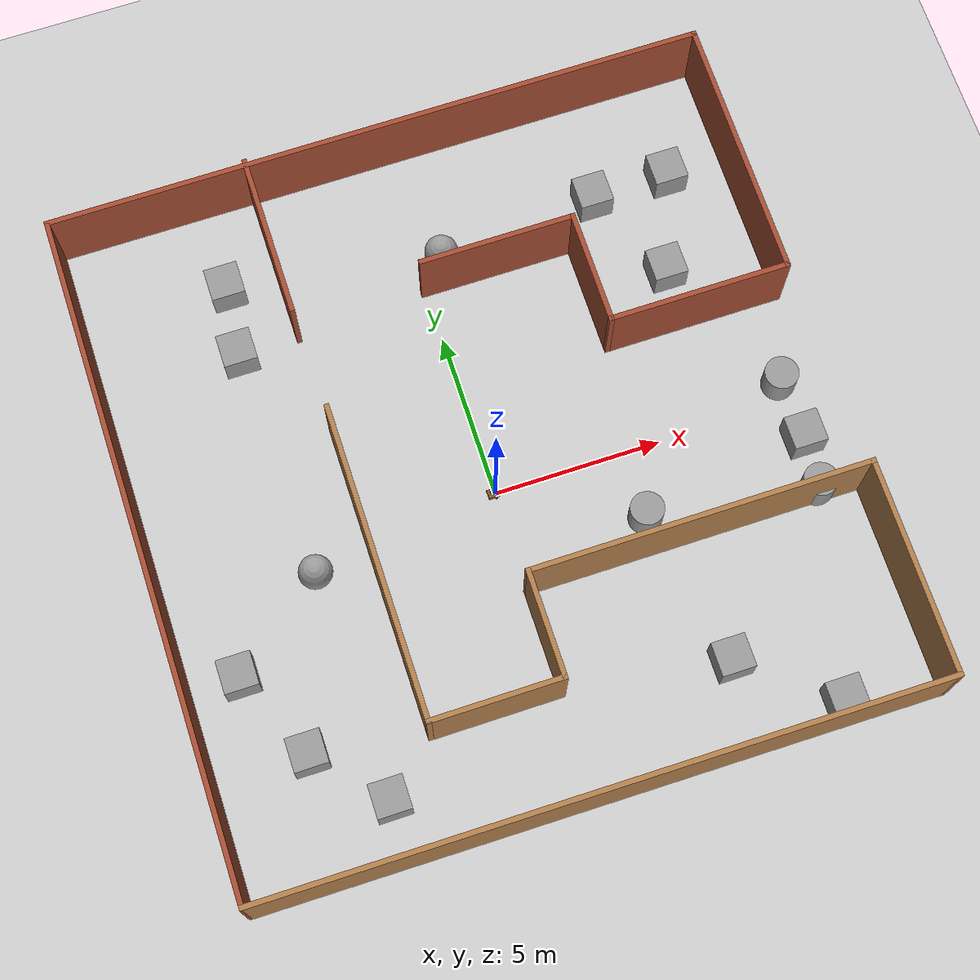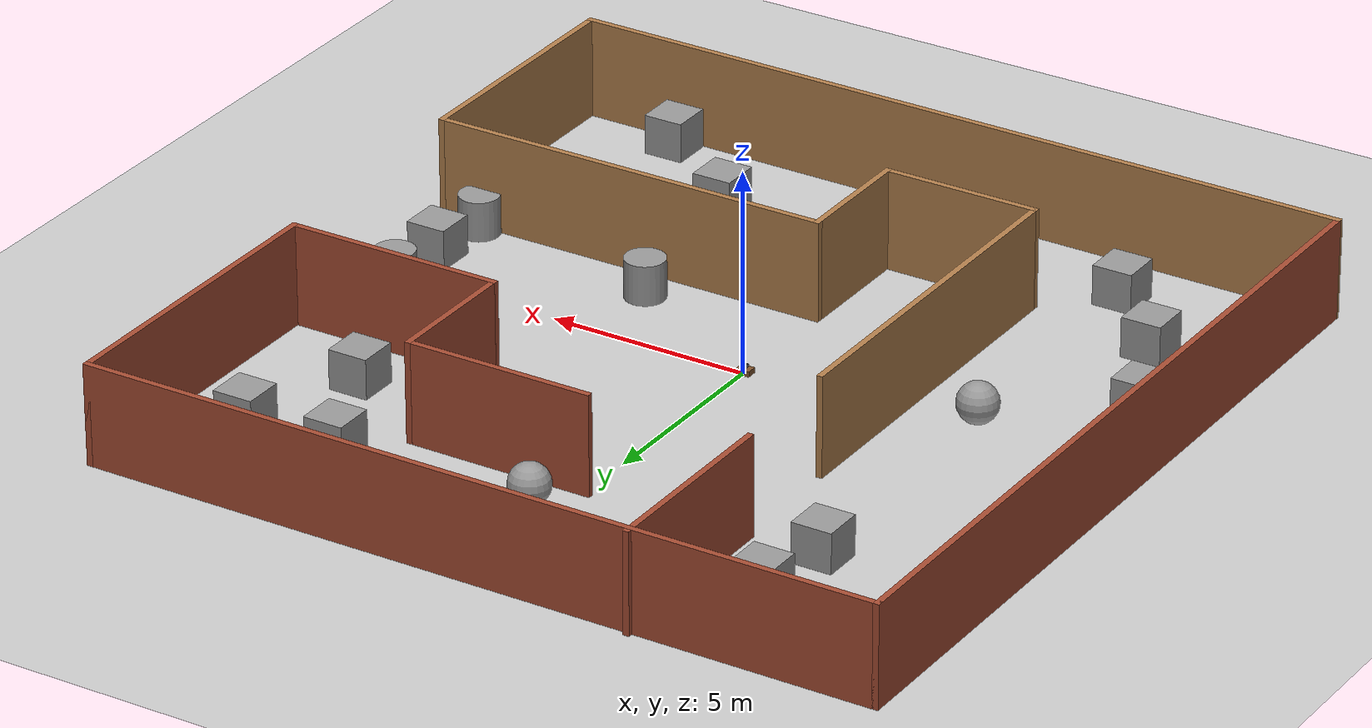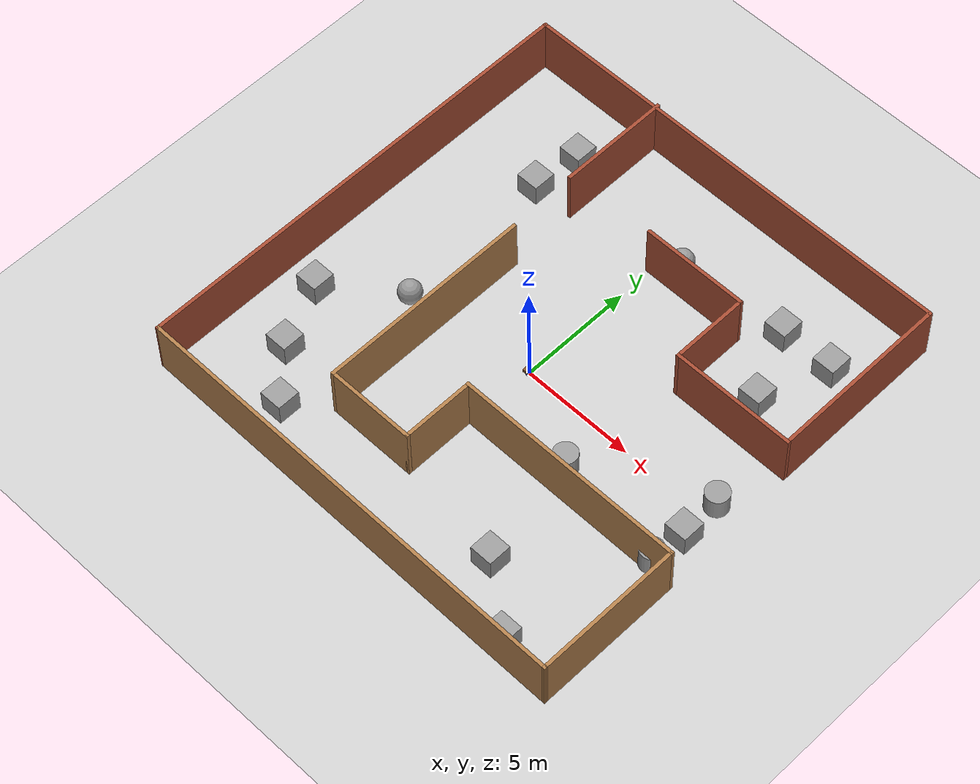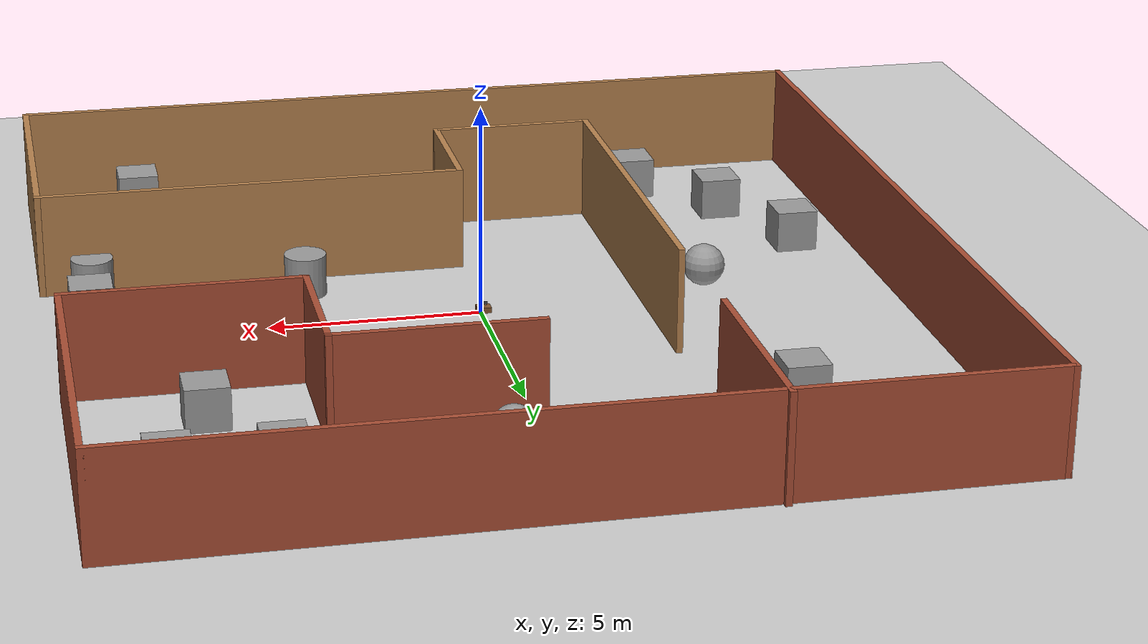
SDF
<sdf version="1.7">
 <world name="default">
  <light name="sun" type="directional">
   <pose>0 0 10 0 -0 0</pose>
   <diffuse>0.8 0.8 0.8 1</diffuse>
   <specular>0.2 0.2 0.2 1</specular>
   <attenuation>
    <range>1000</range>
    <constant>0.9</constant>
    <linear>0.01</linear>
    <quadratic>0.001</quadratic>
   </attenuation>
   <direction>-0.5 0.1 -0.9</direction>
   <spot><inner_angle>0</inner_angle><outer_angle>0</outer_angle><falloff>0</falloff></spot>
  </light>
  <model name="ground_plane">
   <static>1</static>
   <link name="link">
    <collision name="collision">
     <geometry><plane><normal>0 0 1</normal><size>100 100</size></plane></geometry>
     <surface>
      <contact><collide_bitmask>65535</collide_bitmask></contact>
      <friction><ode><mu>100</mu><mu2>50</mu2></ode></friction>
     </surface>
    </collision>
    <visual name="visual">
     <cast_shadows>0</cast_shadows>
     <geometry><plane><normal>0 0 1</normal><size>100 100</size></plane></geometry>
     <material>
      <script><uri>file://media/materials/scripts/gazebo.material</uri><name>Gazebo/Grey</name></script>
     </material>
    </visual>
   </link>
  </model>
  <gravity>0 0 -9.8</gravity>
  <magnetic_field>6e-06 2.3e-05 -4.2e-05</magnetic_field>
  <atmosphere type="adiabatic"/>
  <physics type="ode">
   <max_step_size>0.001</max_step_size>
   <real_time_factor>1</real_time_factor>
   <real_time_update_rate>1000</real_time_update_rate>
  </physics>
  <scene><ambient>0.4 0.4 0.4 1</ambient><background>0.7 0.7 0.7 1</background><shadows>1</shadows></scene>
  <spherical_coordinates>
   <surface_model>EARTH_WGS84</surface_model>
   <latitude_deg>0</latitude_deg>
   <longitude_deg>0</longitude_deg>
   <elevation>0</elevation>
   <heading_deg>0</heading_deg>
  </spherical_coordinates>
  <model name="bongworld">
   <pose>0.008371 0.87983 0 0 -0 0</pose>
   <link name="Wall_22">
    <collision name="Wall_22_Collision">
     <geometry><box><size>20.1622 0.15 2.5</size></box></geometry>
     <pose>0 0 1.25 0 -0 0</pose>
    </collision>
    <visual name="Wall_22_Visual">
     <pose>0 0 1.25 0 -0 0</pose>
     <geometry><box><size>20.1622 0.15 2.5</size></box></geometry>
     <material>
      <script><uri>file://media/materials/scripts/gazebo.material</uri><name>Gazebo/Wood</name></script>
      <ambient>1 1 1 1</ambient>
     </material>
     <meta><layer>0</layer></meta>
    </visual>
    <pose>-0 -10.2319 0 0 -0 -0.006065</pose>
   </link>
   <link name="Wall_29">
    <collision name="Wall_29_Collision">
     <geometry><box><size>6.5 0.15 2.5</size></box></geometry>
     <pose>0 0 1.25 0 -0 0</pose>
    </collision>
    <visual name="Wall_29_Visual">
     <pose>0 0 1.25 0 -0 0</pose>
     <geometry><box><size>6.5 0.15 2.5</size></box></geometry>
     <material>
      <script><uri>file://media/materials/scripts/gazebo.material</uri><name>Gazebo/Wood</name></script>
      <ambient>1 1 1 1</ambient>
     </material>
     <meta><layer>0</layer></meta>
    </visual>
    <pose>10.0059 -7.11757 0 0 -0 1.5708</pose>
   </link>
   <link name="Wall_30">
    <collision name="Wall_30_Collision">
     <geometry><box><size>10.25 0.15 2.5</size></box></geometry>
     <pose>0 0 1.25 0 -0 0</pose>
    </collision>
    <visual name="Wall_30_Visual">
     <pose>0 0 1.25 0 -0 0</pose>
     <geometry><box><size>10.25 0.15 2.5</size></box></geometry>
     <material>
      <script><uri>file://media/materials/scripts/gazebo.material</uri><name>Gazebo/Wood</name></script>
      <ambient>1 1 1 1</ambient>
     </material>
     <meta><layer>0</layer></meta>
    </visual>
    <pose>4.95591 -3.94257 0 0 -0 3.14159</pose>
   </link>
   <link name="Wall_31">
    <collision name="Wall_31_Collision">
     <geometry><box><size>3.25 0.15 2.5</size></box></geometry>
     <pose>0 0 1.25 0 -0 0</pose>
    </collision>
    <visual name="Wall_31_Visual">
     <pose>0 0 1.25 0 -0 0</pose>
     <geometry><box><size>3.25 0.15 2.5</size></box></geometry>
     <material>
      <script><uri>file://media/materials/scripts/gazebo.material</uri><name>Gazebo/Wood</name></script>
      <ambient>1 1 1 1</ambient>
     </material>
     <meta><layer>0</layer></meta>
    </visual>
    <pose>-0.094089 -5.49257 0 0 -0 -1.5708</pose>
   </link>
   <link name="Wall_33">
    <collision name="Wall_33_Collision">
     <geometry><box><size>4 0.15 2.5</size></box></geometry>
     <pose>0 0 1.25 0 -0 0</pose>
    </collision>
    <visual name="Wall_33_Visual">
     <pose>0 0 1.25 0 -0 0</pose>
     <geometry><box><size>4 0.15 2.5</size></box></geometry>
     <material>
      <script><uri>file://media/materials/scripts/gazebo.material</uri><name>Gazebo/Wood</name></script>
      <ambient>1 1 1 1</ambient>
     </material>
     <meta><layer>0</layer></meta>
    </visual>
    <pose>-2.01909 -7.04257 0 0 -0 3.14159</pose>
   </link>
   <link name="Wall_35">
    <collision name="Wall_35_Collision">
     <geometry><box><size>9.5 0.15 2.5</size></box></geometry>
     <pose>0 0 1.25 0 -0 0</pose>
    </collision>
    <visual name="Wall_35_Visual">
     <pose>0 0 1.25 0 -0 0</pose>
     <geometry><box><size>9.5 0.15 2.5</size></box></geometry>
     <material>
      <script><uri>file://media/materials/scripts/gazebo.material</uri><name>Gazebo/Wood</name></script>
      <ambient>1 1 1 1</ambient>
     </material>
     <meta><layer>0</layer></meta>
    </visual>
    <pose>-3.94409 -2.36757 0 0 -0 1.5708</pose>
   </link>
   <link name="Wall_39">
    <collision name="Wall_39_Collision">
     <geometry><box><size>20.5 0.15 2.5</size></box></geometry>
     <pose>0 0 1.25 0 -0 0</pose>
    </collision>
    <visual name="Wall_39_Visual">
     <pose>0 0 1.25 0 -0 0</pose>
     <geometry><box><size>20.5 0.15 2.5</size></box></geometry>
     <material>
      <script><uri>file://media/materials/scripts/gazebo.material</uri><name>Gazebo/Bricks</name></script>
      <ambient>1 1 1 1</ambient>
     </material>
     <meta><layer>0</layer></meta>
    </visual>
    <pose>-10.0059 0.003801 0 0 -0 1.5708</pose>
   </link>
   <link name="Wall_40">
    <collision name="Wall_40_Collision">
     <geometry><box><size>20 0.15 2.5</size></box></geometry>
     <pose>0 0 1.25 0 -0 0</pose>
    </collision>
    <visual name="Wall_40_Visual">
     <pose>0 0 1.25 0 -0 0</pose>
     <geometry><box><size>20 0.15 2.5</size></box></geometry>
     <material>
      <script><uri>file://media/materials/scripts/gazebo.material</uri><name>Gazebo/Bricks</name></script>
      <ambient>1 1 1 1</ambient>
     </material>
     <meta><layer>0</layer></meta>
    </visual>
    <pose>-0.080911 10.1788 0 0 -0 0</pose>
   </link>
   <link name="Wall_41">
    <collision name="Wall_41_Collision">
     <geometry><box><size>8 0.15 2.5</size></box></geometry>
     <pose>0 0 1.25 0 -0 0</pose>
    </collision>
    <visual name="Wall_41_Visual">
     <pose>0 0 1.25 0 -0 0</pose>
     <geometry><box><size>8 0.15 2.5</size></box></geometry>
     <material>
      <script><uri>file://media/materials/scripts/gazebo.material</uri><name>Gazebo/Bricks</name></script>
      <ambient>1 1 1 1</ambient>
     </material>
     <meta><layer>0</layer></meta>
    </visual>
    <pose>9.84409 6.2538 0 0 -0 -1.5708</pose>
   </link>
   <link name="Wall_42">
    <collision name="Wall_42_Collision">
     <geometry><box><size>5.5 0.15 2.5</size></box></geometry>
     <pose>0 0 1.25 0 -0 0</pose>
    </collision>
    <visual name="Wall_42_Visual">
     <pose>0 0 1.25 0 -0 0</pose>
     <geometry><box><size>5.5 0.15 2.5</size></box></geometry>
     <material>
      <script><uri>file://media/materials/scripts/gazebo.material</uri><name>Gazebo/Bricks</name></script>
      <ambient>1 1 1 1</ambient>
     </material>
     <meta><layer>0</layer></meta>
    </visual>
    <pose>7.16909 2.3288 0 0 -0 3.14159</pose>
   </link>
   <link name="Wall_43">
    <collision name="Wall_43_Collision">
     <geometry><box><size>3.5 0.15 2.5</size></box></geometry>
     <pose>0 0 1.25 0 -0 0</pose>
    </collision>
    <visual name="Wall_43_Visual">
     <pose>0 0 1.25 0 -0 0</pose>
     <geometry><box><size>3.5 0.15 2.5</size></box></geometry>
     <material>
      <script><uri>file://media/materials/scripts/gazebo.material</uri><name>Gazebo/Bricks</name></script>
      <ambient>1 1 1 1</ambient>
     </material>
     <meta><layer>0</layer></meta>
    </visual>
    <pose>4.49409 4.0038 0 0 -0 1.5708</pose>
   </link>
   <link name="Wall_44">
    <collision name="Wall_44_Collision">
     <geometry><box><size>4.75 0.15 2.5</size></box></geometry>
     <pose>0 0 1.25 0 -0 0</pose>
    </collision>
    <visual name="Wall_44_Visual">
     <pose>0 0 1.25 0 -0 0</pose>
     <geometry><box><size>4.75 0.15 2.5</size></box></geometry>
     <material>
      <script><uri>file://media/materials/scripts/gazebo.material</uri><name>Gazebo/Bricks</name></script>
      <ambient>1 1 1 1</ambient>
     </material>
     <meta><layer>0</layer></meta>
    </visual>
    <pose>2.19409 5.6788 0 0 -0 3.14159</pose>
   </link>
   <link name="Wall_46">
    <collision name="Wall_46_Collision">
     <geometry><box><size>5 0.15 2.5</size></box></geometry>
     <pose>0 0 1.25 0 -0 0</pose>
    </collision>
    <visual name="Wall_46_Visual">
     <pose>0 0 1.25 0 -0 0</pose>
     <geometry><box><size>5 0.15 2.5</size></box></geometry>
     <material>
      <script><uri>file://media/materials/scripts/gazebo.material</uri><name>Gazebo/Bricks</name></script>
      <ambient>1 1 1 1</ambient>
     </material>
     <meta><layer>0</layer></meta>
    </visual>
    <pose>-4.04268 7.86802 0 0 -0 -1.5708</pose>
   </link>
   <static>1</static>
  </model>
  <model name="unit_sphere">
   <pose>0.774615 7.52795 0.5 0 -0 0</pose>
   <link name="link">
    <inertial>
     <mass>1</mass>
     <inertia><ixx>0.1</ixx><ixy>0</ixy><ixz>0</ixz><iyy>0.1</iyy><iyz>0</iyz><izz>0.1</izz></inertia>
    </inertial>
    <collision name="collision"><geometry><sphere><radius>0.5</radius></sphere></geometry></collision>
    <visual name="visual">
     <geometry><sphere><radius>0.5</radius></sphere></geometry>
     <material>
      <script><name>Gazebo/Grey</name><uri>file://media/materials/scripts/gazebo.material</uri></script>
     </material>
    </visual>
   </link>
  </model>
  <model name="unit_box">
   <pose>7.29471 -8.77529 0.499995 1e-05 -0 0</pose>
   <link name="link">
    <inertial>
     <mass>1</mass>
     <inertia>
      <ixx>0.166667</ixx>
      <ixy>0</ixy>
      <ixz>0</ixz>
      <iyy>0.166667</iyy>
      <iyz>0</iyz>
      <izz>0.166667</izz>
     </inertia>
    </inertial>
    <collision name="collision"><geometry><box><size>1 1 1</size></box></geometry></collision>
    <visual name="visual">
     <geometry><box><size>1 1 1</size></box></geometry>
     <material>
      <script><name>Gazebo/Grey</name><uri>file://media/materials/scripts/gazebo.material</uri></script>
     </material>
    </visual>
   </link>
  </model>
  <model name="unit_box_0">
   <pose>4.69763 -6.74625 0.499995 0 -1e-05 0</pose>
   <link name="link">
    <inertial>
     <mass>1</mass>
     <inertia>
      <ixx>0.166667</ixx>
      <ixy>0</ixy>
      <ixz>0</ixz>
      <iyy>0.166667</iyy>
      <iyz>0</iyz>
      <izz>0.166667</izz>
     </inertia>
    </inertial>
    <collision name="collision"><geometry><box><size>1 1 1</size></box></geometry></collision>
    <visual name="visual">
     <geometry><box><size>1 1 1</size></box></geometry>
     <material>
      <script><name>Gazebo/Grey</name><uri>file://media/materials/scripts/gazebo.material</uri></script>
     </material>
    </visual>
   </link>
  </model>
  <model name="unit_cylinder">
   <pose>8.83209 -2.74601 0.499991 -0 -0 -0</pose>
   <link name="link">
    <inertial>
     <mass>1</mass>
     <inertia><ixx>0.145833</ixx><ixy>0</ixy><ixz>0</ixz><iyy>0.145833</iyy><iyz>0</iyz><izz>0.125</izz></inertia>
    </inertial>
    <collision name="collision">
     <geometry><cylinder><radius>0.5</radius><length>1</length></cylinder></geometry>
    </collision>
    <visual name="visual">
     <geometry><cylinder><radius>0.5</radius><length>1</length></cylinder></geometry>
     <material>
      <script><name>Gazebo/Grey</name><uri>file://media/materials/scripts/gazebo.material</uri></script>
     </material>
    </visual>
   </link>
  </model>
  <model name="unit_box_1">
   <pose>8.96476 -1.19541 0.499995 0 -1e-05 0</pose>
   <link name="link">
    <inertial>
     <mass>1</mass>
     <inertia>
      <ixx>0.166667</ixx>
      <ixy>0</ixy>
      <ixz>0</ixz>
      <iyy>0.166667</iyy>
      <iyz>0</iyz>
      <izz>0.166667</izz>
     </inertia>
    </inertial>
    <collision name="collision"><geometry><box><size>1 1 1</size></box></geometry></collision>
    <visual name="visual">
     <geometry><box><size>1 1 1</size></box></geometry>
     <material>
      <script><name>Gazebo/Grey</name><uri>file://media/materials/scripts/gazebo.material</uri></script>
     </material>
    </visual>
   </link>
  </model>
  <model name="unit_cylinder_0">
   <pose>8.91399 0.618473 0.499991 -0 -0 -0</pose>
   <link name="link">
    <inertial>
     <mass>1</mass>
     <inertia><ixx>0.145833</ixx><ixy>0</ixy><ixz>0</ixz><iyy>0.145833</iyy><iyz>0</iyz><izz>0.125</izz></inertia>
    </inertial>
    <collision name="collision">
     <geometry><cylinder><radius>0.5</radius><length>1</length></cylinder></geometry>
    </collision>
    <visual name="visual">
     <geometry><cylinder><radius>0.5</radius><length>1</length></cylinder></geometry>
     <material>
      <script><name>Gazebo/Grey</name><uri>file://media/materials/scripts/gazebo.material</uri></script>
     </material>
    </visual>
   </link>
  </model>
  <model name="unit_box_2">
   <pose>6.93453 4.95951 0.499995 0 -1e-05 0</pose>
   <link name="link">
    <inertial>
     <mass>1</mass>
     <inertia>
      <ixx>0.166667</ixx>
      <ixy>0</ixy>
      <ixz>0</ixz>
      <iyy>0.166667</iyy>
      <iyz>0</iyz>
      <izz>0.166667</izz>
     </inertia>
    </inertial>
    <collision name="collision"><geometry><box><size>1 1 1</size></box></geometry></collision>
    <visual name="visual">
     <geometry><box><size>1 1 1</size></box></geometry>
     <material>
      <script><name>Gazebo/Grey</name><uri>file://media/materials/scripts/gazebo.material</uri></script>
     </material>
    </visual>
   </link>
  </model>
  <model name="unit_box_3">
   <pose>5.61902 7.83816 0.499995 -1e-05 -0 -0</pose>
   <link name="link">
    <inertial>
     <mass>1</mass>
     <inertia>
      <ixx>0.166667</ixx>
      <ixy>0</ixy>
      <ixz>0</ixz>
      <iyy>0.166667</iyy>
      <iyz>0</iyz>
      <izz>0.166667</izz>
     </inertia>
    </inertial>
    <collision name="collision"><geometry><box><size>1 1 1</size></box></geometry></collision>
    <visual name="visual">
     <geometry><box><size>1 1 1</size></box></geometry>
     <material>
      <script><name>Gazebo/Grey</name><uri>file://media/materials/scripts/gazebo.material</uri></script>
     </material>
    </visual>
   </link>
  </model>
  <model name="unit_box_4">
   <pose>7.9891 7.87749 0.499995 0 1e-05 0</pose>
   <link name="link">
    <inertial>
     <mass>1</mass>
     <inertia>
      <ixx>0.166667</ixx>
      <ixy>0</ixy>
      <ixz>0</ixz>
      <iyy>0.166667</iyy>
      <iyz>0</iyz>
      <izz>0.166667</izz>
     </inertia>
    </inertial>
    <collision name="collision"><geometry><box><size>1 1 1</size></box></geometry></collision>
    <visual name="visual">
     <geometry><box><size>1 1 1</size></box></geometry>
     <material>
      <script><name>Gazebo/Grey</name><uri>file://media/materials/scripts/gazebo.material</uri></script>
     </material>
    </visual>
   </link>
  </model>
  <model name="unit_cylinder_1">
   <pose>3.84844 -2.02494 0.499991 -0 -0 -0</pose>
   <link name="link">
    <inertial>
     <mass>1</mass>
     <inertia><ixx>0.145833</ixx><ixy>0</ixy><ixz>0</ixz><iyy>0.145833</iyy><iyz>0</iyz><izz>0.125</izz></inertia>
    </inertial>
    <collision name="collision">
     <geometry><cylinder><radius>0.5</radius><length>1</length></cylinder></geometry>
    </collision>
    <visual name="visual">
     <geometry><cylinder><radius>0.5</radius><length>1</length></cylinder></geometry>
     <material>
      <script><name>Gazebo/Grey</name><uri>file://media/materials/scripts/gazebo.material</uri></script>
     </material>
    </visual>
   </link>
  </model>
  <model name="unit_box_5">
   <pose>-5.85997 6.29924 0.499995 0 1e-05 0</pose>
   <link name="link">
    <inertial>
     <mass>1</mass>
     <inertia>
      <ixx>0.166667</ixx>
      <ixy>0</ixy>
      <ixz>0</ixz>
      <iyy>0.166667</iyy>
      <iyz>0</iyz>
      <izz>0.166667</izz>
     </inertia>
    </inertial>
    <collision name="collision"><geometry><box><size>1 1 1</size></box></geometry></collision>
    <visual name="visual">
     <geometry><box><size>1 1 1</size></box></geometry>
     <material>
      <script><name>Gazebo/Grey</name><uri>file://media/materials/scripts/gazebo.material</uri></script>
     </material>
    </visual>
   </link>
  </model>
  <model name="unit_box_6">
   <pose>-5.62911 8.41469 0.499995 1e-05 -0 0</pose>
   <link name="link">
    <inertial>
     <mass>1</mass>
     <inertia>
      <ixx>0.166667</ixx>
      <ixy>0</ixy>
      <ixz>0</ixz>
      <iyy>0.166667</iyy>
      <iyz>0</iyz>
      <izz>0.166667</izz>
     </inertia>
    </inertial>
    <collision name="collision"><geometry><box><size>1 1 1</size></box></geometry></collision>
    <visual name="visual">
     <geometry><box><size>1 1 1</size></box></geometry>
     <material>
      <script><name>Gazebo/Grey</name><uri>file://media/materials/scripts/gazebo.material</uri></script>
     </material>
    </visual>
   </link>
  </model>
  <model name="unit_sphere_0">
   <pose>-5.60805 -0.744858 0.5 0 -0 0</pose>
   <link name="link">
    <inertial>
     <mass>1</mass>
     <inertia><ixx>0.1</ixx><ixy>0</ixy><ixz>0</ixz><iyy>0.1</iyy><iyz>0</iyz><izz>0.1</izz></inertia>
    </inertial>
    <collision name="collision"><geometry><sphere><radius>0.5</radius></sphere></geometry></collision>
    <visual name="visual">
     <geometry><sphere><radius>0.5</radius></sphere></geometry>
     <material>
      <script><name>Gazebo/Grey</name><uri>file://media/materials/scripts/gazebo.material</uri></script>
     </material>
    </visual>
   </link>
  </model>
  <model name="unit_box_7">
   <pose>-8.48411 -2.94486 0.499995 1e-05 -0 0</pose>
   <link name="link">
    <inertial>
     <mass>1</mass>
     <inertia>
      <ixx>0.166667</ixx>
      <ixy>0</ixy>
      <ixz>0</ixz>
      <iyy>0.166667</iyy>
      <iyz>0</iyz>
      <izz>0.166667</izz>
     </inertia>
    </inertial>
    <collision name="collision"><geometry><box><size>1 1 1</size></box></geometry></collision>
    <visual name="visual">
     <geometry><box><size>1 1 1</size></box></geometry>
     <material>
      <script><name>Gazebo/Grey</name><uri>file://media/materials/scripts/gazebo.material</uri></script>
     </material>
    </visual>
   </link>
  </model>
  <model name="unit_box_8">
   <pose>-5.49722 -7.5141 0.499995 0 1e-05 0</pose>
   <link name="link">
    <inertial>
     <mass>1</mass>
     <inertia>
      <ixx>0.166667</ixx>
      <ixy>0</ixy>
      <ixz>0</ixz>
      <iyy>0.166667</iyy>
      <iyz>0</iyz>
      <izz>0.166667</izz>
     </inertia>
    </inertial>
    <collision name="collision"><geometry><box><size>1 1 1</size></box></geometry></collision>
    <visual name="visual">
     <geometry><box><size>1 1 1</size></box></geometry>
     <material>
      <script><name>Gazebo/Grey</name><uri>file://media/materials/scripts/gazebo.material</uri></script>
     </material>
    </visual>
   </link>
  </model>
  <model name="unit_box_9">
   <pose>-7.27983 -5.61135 0.499995 0 1e-05 0</pose>
   <link name="link">
    <inertial>
     <mass>1</mass>
     <inertia>
      <ixx>0.166667</ixx>
      <ixy>0</ixy>
      <ixz>0</ixz>
      <iyy>0.166667</iyy>
      <iyz>0</iyz>
      <izz>0.166667</izz>
     </inertia>
    </inertial>
    <collision name="collision"><geometry><box><size>1 1 1</size></box></geometry></collision>
    <visual name="visual">
     <geometry><box><size>1 1 1</size></box></geometry>
     <material>
      <script><name>Gazebo/Grey</name><uri>file://media/materials/scripts/gazebo.material</uri></script>
     </material>
    </visual>
   </link>
  </model>
  <audio><device>default</device></audio>
  <model name="robot_differential">
   <link name="base_link">
    <inertial>
     <pose>-0.067475 0 0.081098 0 -0 0</pose>
     <mass>0.61</mass>
     <inertia>
      <ixx>0.00561003</ixx>
      <ixy>0</ixy>
      <ixz>0.000453811</ixz>
      <iyy>0.00760348</iyy>
      <iyz>0</iyz>
      <izz>0.00797093</izz>
     </inertia>
    </inertial>
    <collision name="base_link_fixed_joint_lump__chassis_collision">
     <pose>-0.0585 0 0.059 0 -0 0</pose>
     <geometry><box><size>0.335 0.265 0.138</size></box></geometry>
    </collision>
    <collision name="base_link_fixed_joint_lump__caster_wheel_collision_1">
     <pose>-0.151 0 -0.023 0 -0 0</pose>
     <geometry><sphere><radius>0.01</radius></sphere></geometry>
     <surface><friction><ode><mu>0.001</mu><mu2>0.001</mu2></ode></friction></surface>
    </collision>
    <collision name="base_link_fixed_joint_lump__laser_frame_collision_2">
     <pose>-0.104 0 0.202 0 -0 0</pose>
     <geometry><cylinder><length>0.04</length><radius>0.05</radius></cylinder></geometry>
    </collision>
    <visual name="base_link_fixed_joint_lump__chassis_visual">
     <pose>-0.0585 0 0.059 0 -0 0</pose>
     <geometry><box><size>0.335 0.265 0.138</size></box></geometry>
     <material>
      <script><name>Gazebo/Brown</name><uri>file://media/materials/scripts/gazebo.material</uri></script>
     </material>
    </visual>
    <visual name="base_link_fixed_joint_lump__camera_link_visual_1">
     <pose>0.079 0 0.07 0 -0 0</pose>
     <geometry><box><size>0.01 0.03 0.03</size></box></geometry>
     <material>
      <script><name>Gazebo/Red</name><uri>file://media/materials/scripts/gazebo.material</uri></script>
     </material>
    </visual>
    <visual name="base_link_fixed_joint_lump__caster_wheel_visual_2">
     <pose>-0.151 0 -0.023 0 -0 0</pose>
     <geometry><sphere><radius>0.01</radius></sphere></geometry>
     <material>
      <script><name>Gazebo/White</name><uri>file://media/materials/scripts/gazebo.material</uri></script>
     </material>
    </visual>
    <visual name="base_link_fixed_joint_lump__laser_frame_visual_3">
     <pose>-0.104 0 0.202 0 -0 0</pose>
     <geometry><cylinder><length>0.04</length><radius>0.05</radius></cylinder></geometry>
     <material>
      <script><name>Gazebo/Black</name><uri>file://media/materials/scripts/gazebo.material</uri></script>
     </material>
    </visual>
    <visual name="base_link_fixed_joint_lump__laser_frame_visual_4">
     <pose>-0.104 0 0.152 0 -0 0</pose>
     <geometry><cylinder><length>0.1</length><radius>0.01</radius></cylinder></geometry>
     <material>
      <script><name>Gazebo/Black</name><uri>file://media/materials/scripts/gazebo.material</uri></script>
     </material>
    </visual>
    <sensor name="camera" type="depth">
     <visualize>1</visualize>
     <update_rate>10</update_rate>
     <camera>
      <horizontal_fov>1.089</horizontal_fov>
      <image><format>B8G8R8</format><width>640</width><height>480</height></image>
      <clip><near>0.05</near><far>8</far></clip>
     </camera>
     <plugin name="camera_controller" filename="libgazebo_ros_camera.so">
      <frame_name>camera_link_optical</frame_name>
      <min_depth>0.1</min_depth>
      <max_depth>100.0</max_depth>
     </plugin>
     <pose>0.079 0 0.07 0 -0 0</pose>
    </sensor>
    <sensor name="laser" type="ray">
     <visualize>1</visualize>
     <update_rate>10</update_rate>
     <ray>
      <scan>
       <horizontal>
        <samples>360</samples>
        <min_angle>-3.14</min_angle>
        <max_angle>3.14</max_angle>
        <resolution>1</resolution>
       </horizontal>
       <vertical><samples>1</samples><min_angle>0</min_angle><max_angle>0</max_angle></vertical>
      </scan>
      <range><min>0.3</min><max>12</max></range>
     </ray>
     <plugin name="laser_controller" filename="libgazebo_ros_ray_sensor.so">
      <ros><argument>~/out:=scan</argument></ros>
      <output_type>sensor_msgs/LaserScan</output_type>
      <frame_name>laser_frame</frame_name>
     </plugin>
     <pose>-0.104 0 0.202 0 -0 0</pose>
    </sensor>
   </link>
   <joint name="left_wheel_joint" type="revolute">
    <pose relative_to="base_link">0 0.1485 0 -1.5708 0 0</pose>
    <parent>base_link</parent>
    <child>left_wheel</child>
    <axis>
     <xyz>0 0 1</xyz>
     <limit><lower>-1e+16</lower><upper>1e+16</upper></limit>
     <dynamics><spring_reference>0</spring_reference><spring_stiffness>0</spring_stiffness></dynamics>
    </axis>
   </joint>
   <link name="left_wheel">
    <pose relative_to="left_wheel_joint">0 0 0 0 -0 0</pose>
    <inertial>
     <mass>0.05</mass>
     <inertia>
      <ixx>1.64292e-05</ixx>
      <ixy>0</ixy>
      <ixz>0</ixz>
      <iyy>1.64292e-05</iyy>
      <iyz>0</iyz>
      <izz>2.7225e-05</izz>
     </inertia>
    </inertial>
    <collision name="left_wheel_collision">
     <geometry><sphere><radius>0.033</radius></sphere></geometry>
    </collision>
    <visual name="left_wheel_visual">
     <geometry><cylinder><length>0.026</length><radius>0.033</radius></cylinder></geometry>
     <material>
      <script><name>Gazebo/Blue</name><uri>file://media/materials/scripts/gazebo.material</uri></script>
     </material>
    </visual>
   </link>
   <joint name="right_wheel_joint" type="revolute">
    <pose relative_to="base_link">0 -0.1485 0 1.5708 -0 0</pose>
    <parent>base_link</parent>
    <child>right_wheel</child>
    <axis>
     <xyz>0 0 -1</xyz>
     <limit><lower>-1e+16</lower><upper>1e+16</upper></limit>
     <dynamics><spring_reference>0</spring_reference><spring_stiffness>0</spring_stiffness></dynamics>
    </axis>
   </joint>
   <link name="right_wheel">
    <pose relative_to="right_wheel_joint">0 0 0 0 -0 0</pose>
    <inertial>
     <mass>0.05</mass>
     <inertia>
      <ixx>1.64292e-05</ixx>
      <ixy>0</ixy>
      <ixz>0</ixz>
      <iyy>1.64292e-05</iyy>
      <iyz>0</iyz>
      <izz>2.7225e-05</izz>
     </inertia>
    </inertial>
    <collision name="right_wheel_collision">
     <geometry><sphere><radius>0.033</radius></sphere></geometry>
    </collision>
    <visual name="right_wheel_visual">
     <geometry><cylinder><length>0.026</length><radius>0.033</radius></cylinder></geometry>
     <material>
      <script><name>Gazebo/Blue</name><uri>file://media/materials/scripts/gazebo.material</uri></script>
     </material>
    </visual>
   </link>
   <static>0</static>
   <plugin name="diff_drive" filename="libgazebo_ros_diff_drive.so">
    <left_joint>left_wheel_joint</left_joint>
    <right_joint>right_wheel_joint</right_joint>
    <wheel_separation>0.297</wheel_separation>
    <wheel_diameter>0.066</wheel_diameter>
    <max_wheel_torque>200</max_wheel_torque>
    <max_wheel_acceleration>10</max_wheel_acceleration>
    <odometry_frame>odom</odometry_frame>
    <robot_base_frame>base_link</robot_base_frame>
    <publish_odom>1</publish_odom>
    <publish_odom_tf>1</publish_odom_tf>
    <publish_wheel_tf>1</publish_wheel_tf>
   </plugin>
   <pose>-0.010952 0.007885 0.032997 -1.7e-05 1.8e-05 0.014569</pose>
  </model>
 </world>
</sdf>
